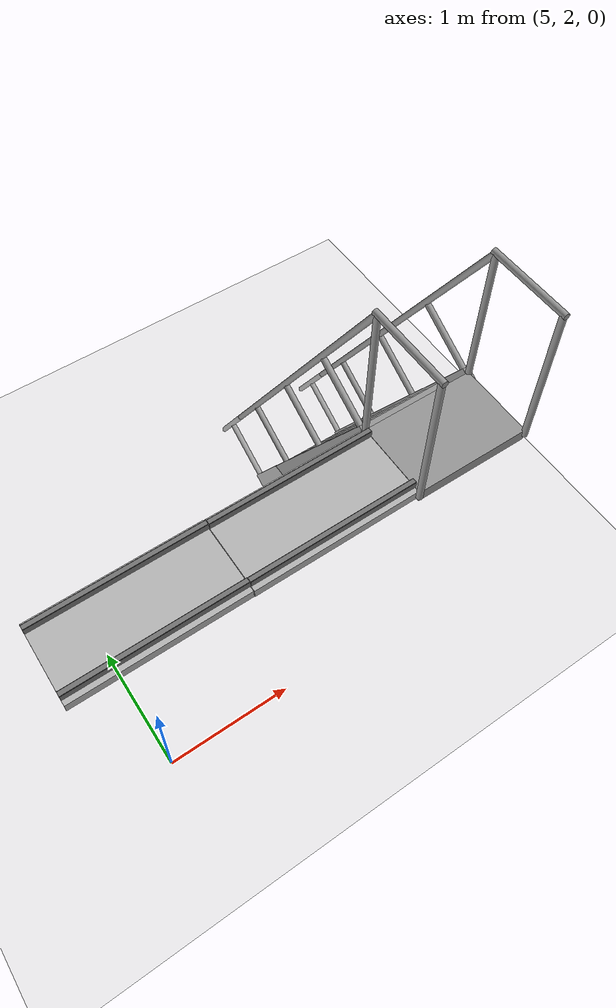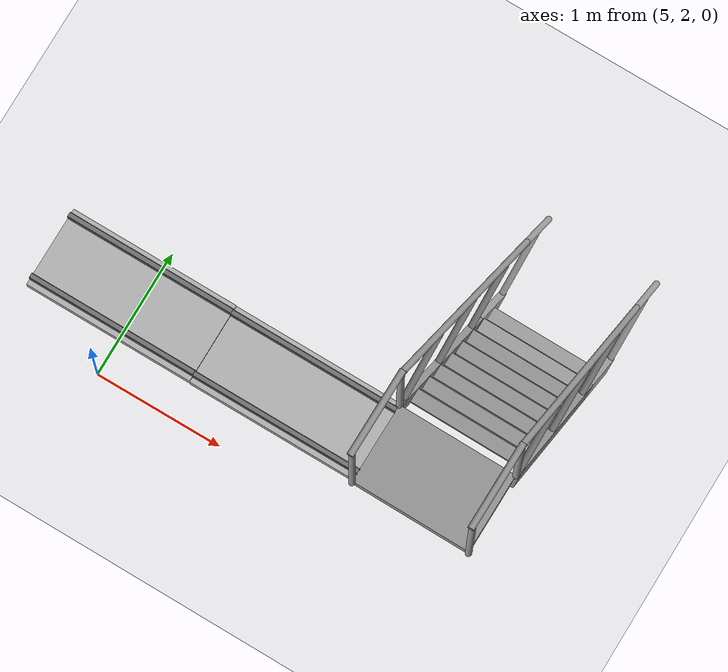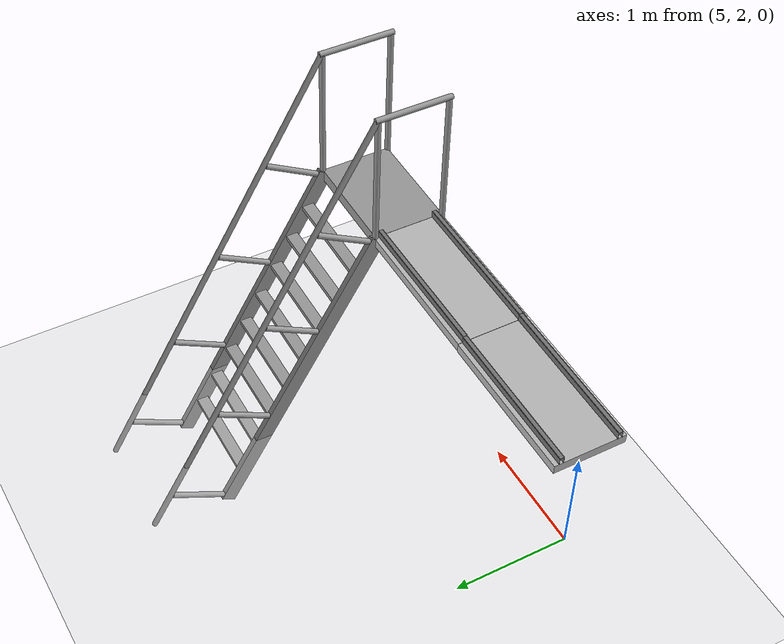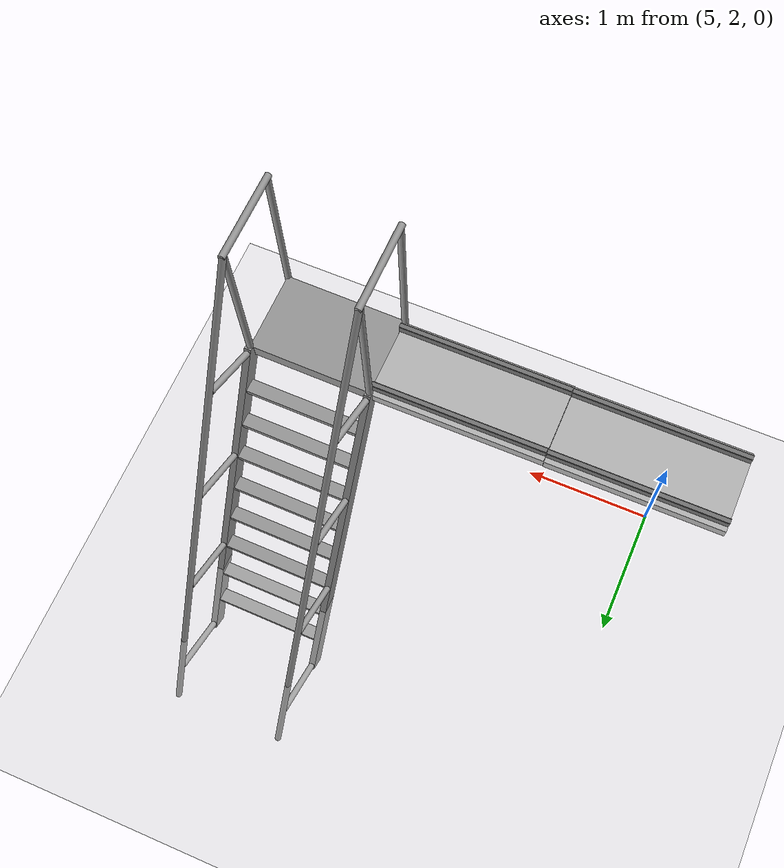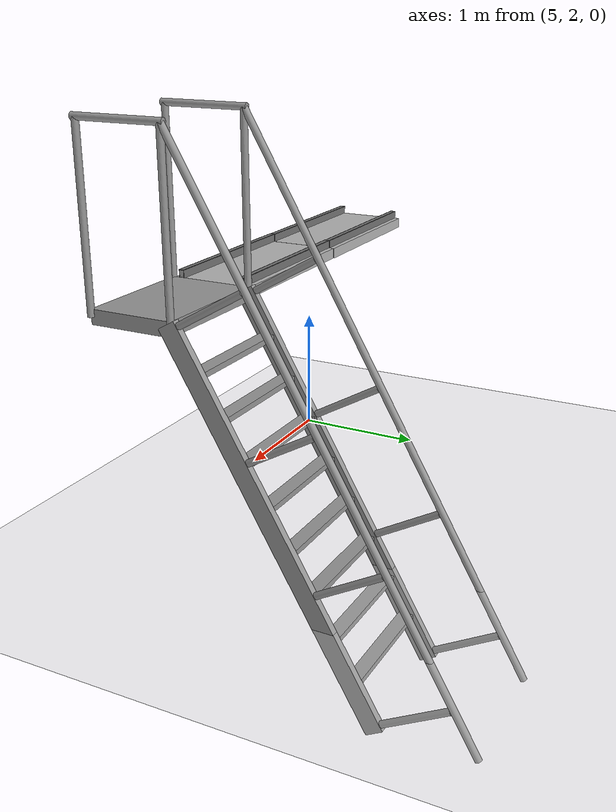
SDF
<sdf version="1.6">
 <world name="default">
  <model name="ground_plane">
   <static>1</static>
   <link name="link">
    <collision name="collision">
     <geometry><plane><normal>0 0 1</normal><size>100 100</size></plane></geometry>
     <surface>
      <contact><collide_bitmask>65535</collide_bitmask></contact>
      <friction><ode><mu>100</mu><mu2>50</mu2></ode></friction>
     </surface>
    </collision>
    <visual name="visual">
     <cast_shadows>0</cast_shadows>
     <geometry><plane><normal>0 0 1</normal><size>100 100</size></plane></geometry>
     <material>
      <script><uri>file://media/materials/scripts/gazebo.material</uri><name>Gazebo/Grey</name></script>
     </material>
    </visual>
   </link>
  </model>
  <model name="ladder_60deg_2rails_clone">
   <static>1</static>
   <link name="step0">
    <pose>0 0.15396 0.266667 0 -0 0</pose>
    <inertial>
     <mass>9.75482</mass>
     <inertia>
      <ixx>0.00957124</ixx>
      <iyy>0.65963</iyy>
      <izz>0.666842</izz>
      <ixy>0</ixy>
      <ixz>0</ixz>
      <iyz>0</iyz>
     </inertia>
    </inertial>
    <collision name="collision"><geometry><box><size>0.9 0.1016 0.0381</size></box></geometry></collision>
    <visual name="visual">
     <geometry><box><size>0.9 0.1016 0.0381</size></box></geometry>
     <material>
      <script><uri>file://media/materials/scripts/gazebo.material</uri><name>Gazebo/Grey</name></script>
     </material>
    </visual>
   </link>
   <link name="step1">
    <pose>0 0.30792 0.533333 0 -0 0</pose>
    <inertial>
     <mass>9.75482</mass>
     <inertia>
      <ixx>0.00957124</ixx>
      <iyy>0.65963</iyy>
      <izz>0.666842</izz>
      <ixy>0</ixy>
      <ixz>0</ixz>
      <iyz>0</iyz>
     </inertia>
    </inertial>
    <collision name="collision"><geometry><box><size>0.9 0.1016 0.0381</size></box></geometry></collision>
    <visual name="visual">
     <geometry><box><size>0.9 0.1016 0.0381</size></box></geometry>
     <material>
      <script><uri>file://media/materials/scripts/gazebo.material</uri><name>Gazebo/Grey</name></script>
     </material>
    </visual>
   </link>
   <link name="step2">
    <pose>0 0.46188 0.8 0 -0 0</pose>
    <inertial>
     <mass>9.75482</mass>
     <inertia>
      <ixx>0.00957124</ixx>
      <iyy>0.65963</iyy>
      <izz>0.666842</izz>
      <ixy>0</ixy>
      <ixz>0</ixz>
      <iyz>0</iyz>
     </inertia>
    </inertial>
    <collision name="collision"><geometry><box><size>0.9 0.1016 0.0381</size></box></geometry></collision>
    <visual name="visual">
     <geometry><box><size>0.9 0.1016 0.0381</size></box></geometry>
     <material>
      <script><uri>file://media/materials/scripts/gazebo.material</uri><name>Gazebo/Grey</name></script>
     </material>
    </visual>
   </link>
   <link name="step3">
    <pose>0 0.61584 1.06667 0 -0 0</pose>
    <inertial>
     <mass>9.75482</mass>
     <inertia>
      <ixx>0.00957124</ixx>
      <iyy>0.65963</iyy>
      <izz>0.666842</izz>
      <ixy>0</ixy>
      <ixz>0</ixz>
      <iyz>0</iyz>
     </inertia>
    </inertial>
    <collision name="collision"><geometry><box><size>0.9 0.1016 0.0381</size></box></geometry></collision>
    <visual name="visual">
     <geometry><box><size>0.9 0.1016 0.0381</size></box></geometry>
     <material>
      <script><uri>file://media/materials/scripts/gazebo.material</uri><name>Gazebo/Grey</name></script>
     </material>
    </visual>
   </link>
   <link name="step4">
    <pose>0 0.7698 1.33333 0 -0 0</pose>
    <inertial>
     <mass>9.75482</mass>
     <inertia>
      <ixx>0.00957124</ixx>
      <iyy>0.65963</iyy>
      <izz>0.666842</izz>
      <ixy>0</ixy>
      <ixz>0</ixz>
      <iyz>0</iyz>
     </inertia>
    </inertial>
    <collision name="collision"><geometry><box><size>0.9 0.1016 0.0381</size></box></geometry></collision>
    <visual name="visual">
     <geometry><box><size>0.9 0.1016 0.0381</size></box></geometry>
     <material>
      <script><uri>file://media/materials/scripts/gazebo.material</uri><name>Gazebo/Grey</name></script>
     </material>
    </visual>
   </link>
   <link name="step5">
    <pose>0 0.92376 1.6 0 -0 0</pose>
    <inertial>
     <mass>9.75482</mass>
     <inertia>
      <ixx>0.00957124</ixx>
      <iyy>0.65963</iyy>
      <izz>0.666842</izz>
      <ixy>0</ixy>
      <ixz>0</ixz>
      <iyz>0</iyz>
     </inertia>
    </inertial>
    <collision name="collision"><geometry><box><size>0.9 0.1016 0.0381</size></box></geometry></collision>
    <visual name="visual">
     <geometry><box><size>0.9 0.1016 0.0381</size></box></geometry>
     <material>
      <script><uri>file://media/materials/scripts/gazebo.material</uri><name>Gazebo/Grey</name></script>
     </material>
    </visual>
   </link>
   <link name="step6">
    <pose>0 1.07772 1.86667 0 -0 0</pose>
    <inertial>
     <mass>9.75482</mass>
     <inertia>
      <ixx>0.00957124</ixx>
      <iyy>0.65963</iyy>
      <izz>0.666842</izz>
      <ixy>0</ixy>
      <ixz>0</ixz>
      <iyz>0</iyz>
     </inertia>
    </inertial>
    <collision name="collision"><geometry><box><size>0.9 0.1016 0.0381</size></box></geometry></collision>
    <visual name="visual">
     <geometry><box><size>0.9 0.1016 0.0381</size></box></geometry>
     <material>
      <script><uri>file://media/materials/scripts/gazebo.material</uri><name>Gazebo/Grey</name></script>
     </material>
    </visual>
   </link>
   <link name="step7">
    <pose>0 1.23168 2.13333 0 -0 0</pose>
    <inertial>
     <mass>9.75482</mass>
     <inertia>
      <ixx>0.00957124</ixx>
      <iyy>0.65963</iyy>
      <izz>0.666842</izz>
      <ixy>0</ixy>
      <ixz>0</ixz>
      <iyz>0</iyz>
     </inertia>
    </inertial>
    <collision name="collision"><geometry><box><size>0.9 0.1016 0.0381</size></box></geometry></collision>
    <visual name="visual">
     <geometry><box><size>0.9 0.1016 0.0381</size></box></geometry>
     <material>
      <script><uri>file://media/materials/scripts/gazebo.material</uri><name>Gazebo/Grey</name></script>
     </material>
    </visual>
   </link>
   <link name="landing">
    <pose>0 1.68564 2.4 0 -0 0</pose>
    <inertial>
     <mass>57.6072</mass>
     <inertia><ixx>1.73518</ixx><iyy>3.89545</iyy><izz>5.6167</izz><ixy>0</ixy><ixz>0</ixz><iyz>0</iyz></inertia>
    </inertial>
    <collision name="collision"><geometry><box><size>0.9 0.6 0.1016</size></box></geometry></collision>
    <visual name="visual">
     <geometry><box><size>0.9 0.6 0.1016</size></box></geometry>
     <material>
      <script><uri>file://media/materials/scripts/gazebo.material</uri><name>Gazebo/Grey</name></script>
     </material>
    </visual>
   </link>
   <link name="left_side_wall">
    <pose>-0.45 0.69282 1.2 1.0472 -0 0</pose>
    <collision name="collision"><geometry><box><size>0.0508 2.85128 0.13</size></box></geometry></collision>
    <visual name="visual">
     <geometry><box><size>0.0508 2.85128 0.13</size></box></geometry>
     <material>
      <script><uri>file://media/materials/scripts/gazebo.material</uri><name>Gazebo/Grey</name></script>
     </material>
    </visual>
   </link>
   <link name="right_side_wall">
    <pose>0.45 0.69282 1.2 1.0472 -0 0</pose>
    <collision name="collision"><geometry><box><size>0.0508 2.85128 0.13</size></box></geometry></collision>
    <visual name="visual">
     <geometry><box><size>0.0508 2.85128 0.13</size></box></geometry>
     <material>
      <script><uri>file://media/materials/scripts/gazebo.material</uri><name>Gazebo/Grey</name></script>
     </material>
    </visual>
   </link>
   <link name="left_railing_long">
    <pose>-0.45 0.34282 1.80622 -0.523599 0 0</pose>
    <collision name="collision">
     <geometry><cylinder><radius>0.02413</radius><length>4.17128</length></cylinder></geometry>
    </collision>
    <visual name="visual">
     <geometry><cylinder><radius>0.02413</radius><length>4.17128</length></cylinder></geometry>
     <material>
      <script><uri>file://media/materials/scripts/gazebo.material</uri><name>Gazebo/Grey</name></script>
     </material>
    </visual>
   </link>
   <link name="left_railing_upright0">
    <pose>-0.45 -0.274963 0.15875 1.0472 -0 0</pose>
    <collision name="collision">
     <geometry><cylinder><radius>0.02413</radius><length>0.541218</length></cylinder></geometry>
    </collision>
    <visual name="visual">
     <geometry><cylinder><radius>0.02413</radius><length>0.541218</length></cylinder></geometry>
     <material>
      <script><uri>file://media/materials/scripts/gazebo.material</uri><name>Gazebo/Grey</name></script>
     </material>
    </visual>
   </link>
   <link name="left_railing_upright1">
    <pose>-0.45 0.186917 0.95875 1.0472 -0 0</pose>
    <collision name="collision">
     <geometry><cylinder><radius>0.02413</radius><length>0.541218</length></cylinder></geometry>
    </collision>
    <visual name="visual">
     <geometry><cylinder><radius>0.02413</radius><length>0.541218</length></cylinder></geometry>
     <material>
      <script><uri>file://media/materials/scripts/gazebo.material</uri><name>Gazebo/Grey</name></script>
     </material>
    </visual>
   </link>
   <link name="left_railing_upright2">
    <pose>-0.45 0.648797 1.75875 1.0472 -0 0</pose>
    <collision name="collision">
     <geometry><cylinder><radius>0.02413</radius><length>0.541218</length></cylinder></geometry>
    </collision>
    <visual name="visual">
     <geometry><cylinder><radius>0.02413</radius><length>0.541218</length></cylinder></geometry>
     <material>
      <script><uri>file://media/materials/scripts/gazebo.material</uri><name>Gazebo/Grey</name></script>
     </material>
    </visual>
   </link>
   <link name="left_railing_upright3">
    <pose>-0.45 1.11068 2.55875 1.0472 -0 0</pose>
    <collision name="collision">
     <geometry><cylinder><radius>0.02413</radius><length>0.541218</length></cylinder></geometry>
    </collision>
    <visual name="visual">
     <geometry><cylinder><radius>0.02413</radius><length>0.541218</length></cylinder></geometry>
     <material>
      <script><uri>file://media/materials/scripts/gazebo.material</uri><name>Gazebo/Grey</name></script>
     </material>
    </visual>
   </link>
   <link name="left_railing_landing_top">
    <pose>-0.45 1.68564 3.61244 1.5708 -0 0</pose>
    <collision name="collision">
     <geometry><cylinder><radius>0.02413</radius><length>0.64826</length></cylinder></geometry>
    </collision>
    <visual name="visual">
     <geometry><cylinder><radius>0.02413</radius><length>0.64826</length></cylinder></geometry>
     <material>
      <script><uri>file://media/materials/scripts/gazebo.material</uri><name>Gazebo/Grey</name></script>
     </material>
    </visual>
   </link>
   <link name="left_railing_landing_upright_0">
    <pose>-0.45 1.38564 3.00622 0 -0 0</pose>
    <collision name="collision">
     <geometry><cylinder><radius>0.02413</radius><length>1.21244</length></cylinder></geometry>
    </collision>
    <visual name="visual">
     <geometry><cylinder><radius>0.02413</radius><length>1.21244</length></cylinder></geometry>
     <material>
      <script><uri>file://media/materials/scripts/gazebo.material</uri><name>Gazebo/Grey</name></script>
     </material>
    </visual>
   </link>
   <link name="left_railing_landing_upright_1">
    <pose>-0.45 1.98564 3.00622 0 -0 0</pose>
    <collision name="collision">
     <geometry><cylinder><radius>0.02413</radius><length>1.21244</length></cylinder></geometry>
    </collision>
    <visual name="visual">
     <geometry><cylinder><radius>0.02413</radius><length>1.21244</length></cylinder></geometry>
     <material>
      <script><uri>file://media/materials/scripts/gazebo.material</uri><name>Gazebo/Grey</name></script>
     </material>
    </visual>
   </link>
   <link name="right_railing_long">
    <pose>0.45 0.34282 1.80622 -0.523599 0 0</pose>
    <collision name="collision">
     <geometry><cylinder><radius>0.02413</radius><length>4.17128</length></cylinder></geometry>
    </collision>
    <visual name="visual">
     <geometry><cylinder><radius>0.02413</radius><length>4.17128</length></cylinder></geometry>
     <material>
      <script><uri>file://media/materials/scripts/gazebo.material</uri><name>Gazebo/Grey</name></script>
     </material>
    </visual>
   </link>
   <link name="right_railing_upright0">
    <pose>0.45 -0.274963 0.15875 1.0472 -0 0</pose>
    <collision name="collision">
     <geometry><cylinder><radius>0.02413</radius><length>0.541218</length></cylinder></geometry>
    </collision>
    <visual name="visual">
     <geometry><cylinder><radius>0.02413</radius><length>0.541218</length></cylinder></geometry>
     <material>
      <script><uri>file://media/materials/scripts/gazebo.material</uri><name>Gazebo/Grey</name></script>
     </material>
    </visual>
   </link>
   <link name="right_railing_upright1">
    <pose>0.45 0.186917 0.95875 1.0472 -0 0</pose>
    <collision name="collision">
     <geometry><cylinder><radius>0.02413</radius><length>0.541218</length></cylinder></geometry>
    </collision>
    <visual name="visual">
     <geometry><cylinder><radius>0.02413</radius><length>0.541218</length></cylinder></geometry>
     <material>
      <script><uri>file://media/materials/scripts/gazebo.material</uri><name>Gazebo/Grey</name></script>
     </material>
    </visual>
   </link>
   <link name="right_railing_upright2">
    <pose>0.45 0.648797 1.75875 1.0472 -0 0</pose>
    <collision name="collision">
     <geometry><cylinder><radius>0.02413</radius><length>0.541218</length></cylinder></geometry>
    </collision>
    <visual name="visual">
     <geometry><cylinder><radius>0.02413</radius><length>0.541218</length></cylinder></geometry>
     <material>
      <script><uri>file://media/materials/scripts/gazebo.material</uri><name>Gazebo/Grey</name></script>
     </material>
    </visual>
   </link>
   <link name="right_railing_upright3">
    <pose>0.45 1.11068 2.55875 1.0472 -0 0</pose>
    <collision name="collision">
     <geometry><cylinder><radius>0.02413</radius><length>0.541218</length></cylinder></geometry>
    </collision>
    <visual name="visual">
     <geometry><cylinder><radius>0.02413</radius><length>0.541218</length></cylinder></geometry>
     <material>
      <script><uri>file://media/materials/scripts/gazebo.material</uri><name>Gazebo/Grey</name></script>
     </material>
    </visual>
   </link>
   <link name="right_railing_landing_top">
    <pose>0.45 1.68564 3.61244 1.5708 -0 0</pose>
    <collision name="collision">
     <geometry><cylinder><radius>0.02413</radius><length>0.64826</length></cylinder></geometry>
    </collision>
    <visual name="visual">
     <geometry><cylinder><radius>0.02413</radius><length>0.64826</length></cylinder></geometry>
     <material>
      <script><uri>file://media/materials/scripts/gazebo.material</uri><name>Gazebo/Grey</name></script>
     </material>
    </visual>
   </link>
   <link name="right_railing_landing_upright_0">
    <pose>0.45 1.38564 3.00622 0 -0 0</pose>
    <collision name="collision">
     <geometry><cylinder><radius>0.02413</radius><length>1.21244</length></cylinder></geometry>
    </collision>
    <visual name="visual">
     <geometry><cylinder><radius>0.02413</radius><length>1.21244</length></cylinder></geometry>
     <material>
      <script><uri>file://media/materials/scripts/gazebo.material</uri><name>Gazebo/Grey</name></script>
     </material>
    </visual>
   </link>
   <link name="right_railing_landing_upright_1">
    <pose>0.45 1.98564 3.00622 0 -0 0</pose>
    <collision name="collision">
     <geometry><cylinder><radius>0.02413</radius><length>1.21244</length></cylinder></geometry>
    </collision>
    <visual name="visual">
     <geometry><cylinder><radius>0.02413</radius><length>1.21244</length></cylinder></geometry>
     <material>
      <script><uri>file://media/materials/scripts/gazebo.material</uri><name>Gazebo/Grey</name></script>
     </material>
    </visual>
   </link>
   <pose>7.53336 4.00092 -0.605235 0 -0 3.13335</pose>
  </model>
  <model name="frc2016_moat_clone_1_clone_1">
   <static>1</static>
   <link name="link">
    <inertial>
     <mass>10</mass>
     <pose>0 0 0.06738 0 -0 0</pose>
     <inertia><ixx>0.312195</ixx><ixy>0</ixy><ixz>0</ixz><iyy>1.35927</iyy><iyz>0</iyz><izz>1.64109</izz></inertia>
    </inertial>
    <visual name="platform">
     <pose>0 0 0.0381 0 -0 0</pose>
     <geometry><box><size>1.27 0.5969 0.0762</size></box></geometry>
    </visual>
    <collision name="platform">
     <pose>0 0 0.0381 0 -0 0</pose>
     <geometry><box><size>1.27 0.5969 0.0762</size></box></geometry>
    </collision>
    <visual name="tube1_side1">
     <pose>0 -0.25876 0.10301 0 -0 0</pose>
     <geometry><box><size>1.27 0.003175 0.0635</size></box></geometry>
     <material><ambient>0.46 0.46 0.46 1</ambient><diffuse>0.46 0.46 0.46 1</diffuse></material>
    </visual>
    <collision name="tube1_side1">
     <pose>0 -0.25876 0.10301 0 -0 0</pose>
     <geometry><box><size>1.27 0.003175 0.0635</size></box></geometry>
    </collision>
    <visual name="tube1_side2">
     <pose>0 -0.22384 0.10301 0 -0 0</pose>
     <geometry><box><size>1.27 0.003175 0.0635</size></box></geometry>
     <material><ambient>0.46 0.46 0.46 1</ambient><diffuse>0.46 0.46 0.46 1</diffuse></material>
    </visual>
    <collision name="tube1_side2">
     <pose>0 -0.22384 0.10301 0 -0 0</pose>
     <geometry><box><size>1.27 0.003175 0.0635</size></box></geometry>
    </collision>
    <visual name="tube1_top">
     <pose>0 -0.2413 0.13317 0 -0 0</pose>
     <geometry><box><size>1.27 0.0381 0.003175</size></box></geometry>
     <material><ambient>0.46 0.46 0.46 1</ambient><diffuse>0.46 0.46 0.46 1</diffuse></material>
    </visual>
    <collision name="tube1_top">
     <pose>0 -0.2413 0.13317 0 -0 0</pose>
     <geometry><box><size>1.27 0.0381 0.003175</size></box></geometry>
    </collision>
    <visual name="tube2_side1">
     <pose>0 0.22384 0.10301 0 -0 0</pose>
     <geometry><box><size>1.27 0.003175 0.0635</size></box></geometry>
     <material><ambient>0.46 0.46 0.46 1</ambient><diffuse>0.46 0.46 0.46 1</diffuse></material>
    </visual>
    <collision name="tube2_side1">
     <pose>0 0.22384 0.10301 0 -0 0</pose>
     <geometry><box><size>1.27 0.003175 0.0635</size></box></geometry>
    </collision>
    <visual name="tube2_side2">
     <pose>0 0.25876 0.10301 0 -0 0</pose>
     <geometry><box><size>1.27 0.003175 0.0635</size></box></geometry>
     <material><ambient>0.46 0.46 0.46 1</ambient><diffuse>0.46 0.46 0.46 1</diffuse></material>
    </visual>
    <collision name="tube2_side2">
     <pose>0 0.25876 0.10301 0 -0 0</pose>
     <geometry><box><size>1.27 0.003175 0.0635</size></box></geometry>
    </collision>
    <visual name="tube2_top">
     <pose>0 0.2413 0.13317 0 -0 0</pose>
     <geometry><box><size>1.27 0.0381 0.003175</size></box></geometry>
     <material><ambient>0.46 0.46 0.46 1</ambient><diffuse>0.46 0.46 0.46 1</diffuse></material>
    </visual>
    <collision name="tube2_top">
     <pose>0 0.2413 0.13317 0 -0 0</pose>
     <geometry><box><size>1.27 0.0381 0.003175</size></box></geometry>
    </collision>
   </link>
   <pose>5.16578 2.33435 1.76626 0 -0 0</pose>
  </model>
  <model name="frc2016_moat_clone_1_clone_2">
   <static>1</static>
   <link name="link">
    <inertial>
     <mass>10</mass>
     <pose>0 0 0.06738 0 -0 0</pose>
     <inertia><ixx>0.312195</ixx><ixy>0</ixy><ixz>0</ixz><iyy>1.35927</iyy><iyz>0</iyz><izz>1.64109</izz></inertia>
    </inertial>
    <visual name="platform">
     <pose>0 0 0.0381 0 -0 0</pose>
     <geometry><box><size>1.27 0.5969 0.0762</size></box></geometry>
    </visual>
    <collision name="platform">
     <pose>0 0 0.0381 0 -0 0</pose>
     <geometry><box><size>1.27 0.5969 0.0762</size></box></geometry>
    </collision>
    <visual name="tube1_side1">
     <pose>0 -0.25876 0.10301 0 -0 0</pose>
     <geometry><box><size>1.27 0.003175 0.0635</size></box></geometry>
     <material><ambient>0.46 0.46 0.46 1</ambient><diffuse>0.46 0.46 0.46 1</diffuse></material>
    </visual>
    <collision name="tube1_side1">
     <pose>0 -0.25876 0.10301 0 -0 0</pose>
     <geometry><box><size>1.27 0.003175 0.0635</size></box></geometry>
    </collision>
    <visual name="tube1_side2">
     <pose>0 -0.22384 0.10301 0 -0 0</pose>
     <geometry><box><size>1.27 0.003175 0.0635</size></box></geometry>
     <material><ambient>0.46 0.46 0.46 1</ambient><diffuse>0.46 0.46 0.46 1</diffuse></material>
    </visual>
    <collision name="tube1_side2">
     <pose>0 -0.22384 0.10301 0 -0 0</pose>
     <geometry><box><size>1.27 0.003175 0.0635</size></box></geometry>
    </collision>
    <visual name="tube1_top">
     <pose>0 -0.2413 0.13317 0 -0 0</pose>
     <geometry><box><size>1.27 0.0381 0.003175</size></box></geometry>
     <material><ambient>0.46 0.46 0.46 1</ambient><diffuse>0.46 0.46 0.46 1</diffuse></material>
    </visual>
    <collision name="tube1_top">
     <pose>0 -0.2413 0.13317 0 -0 0</pose>
     <geometry><box><size>1.27 0.0381 0.003175</size></box></geometry>
    </collision>
    <visual name="tube2_side1">
     <pose>0 0.22384 0.10301 0 -0 0</pose>
     <geometry><box><size>1.27 0.003175 0.0635</size></box></geometry>
     <material><ambient>0.46 0.46 0.46 1</ambient><diffuse>0.46 0.46 0.46 1</diffuse></material>
    </visual>
    <collision name="tube2_side1">
     <pose>0 0.22384 0.10301 0 -0 0</pose>
     <geometry><box><size>1.27 0.003175 0.0635</size></box></geometry>
    </collision>
    <visual name="tube2_side2">
     <pose>0 0.25876 0.10301 0 -0 0</pose>
     <geometry><box><size>1.27 0.003175 0.0635</size></box></geometry>
     <material><ambient>0.46 0.46 0.46 1</ambient><diffuse>0.46 0.46 0.46 1</diffuse></material>
    </visual>
    <collision name="tube2_side2">
     <pose>0 0.25876 0.10301 0 -0 0</pose>
     <geometry><box><size>1.27 0.003175 0.0635</size></box></geometry>
    </collision>
    <visual name="tube2_top">
     <pose>0 0.2413 0.13317 0 -0 0</pose>
     <geometry><box><size>1.27 0.0381 0.003175</size></box></geometry>
     <material><ambient>0.46 0.46 0.46 1</ambient><diffuse>0.46 0.46 0.46 1</diffuse></material>
    </visual>
    <collision name="tube2_top">
     <pose>0 0.2413 0.13317 0 -0 0</pose>
     <geometry><box><size>1.27 0.0381 0.003175</size></box></geometry>
    </collision>
   </link>
   <pose>6.43869 2.33056 1.7668 0 -0 0</pose>
  </model>
 </world>
</sdf>
